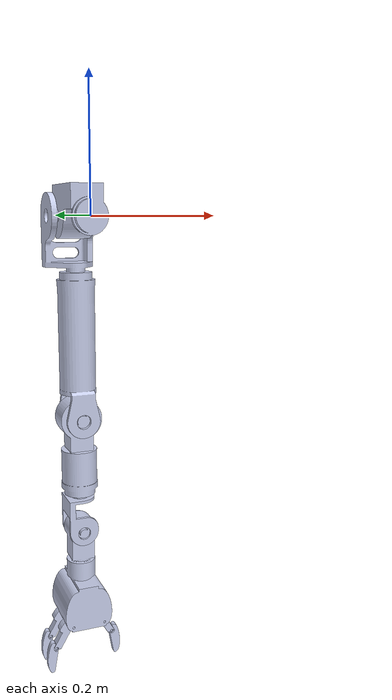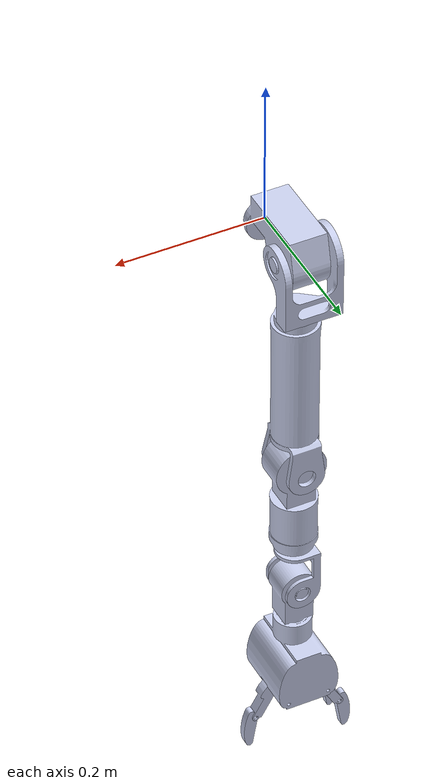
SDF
<?xml version='1.0'?>
<sdf version='1.6'>
  <model name='TEO_leftArm'>

    <link name='FrontalLeftShoulder_link'>
      <pose>0 0 0 0 -0 0</pose>
      <inertial>
        <pose>-0.002272 0.056186 0.008165 0 -0 0</pose>
        <mass>2</mass>
        <inertia>
          <ixx>0.004226791</ixx>
          <ixy>-0.0000855</ixy>
          <ixz>-0.0000117</ixz>
          <iyy>0.00212734</iyy>
          <iyz>0.000280493</iyz>
          <izz>0.00409322</izz>
        </inertia>
      </inertial>
      <visual name='FrontalLeftShoulder_visual'>
        <geometry>
          <mesh>
            <uri>model://teo/meshes/visual/FrontalLeftShoulder.dae</uri>
          </mesh>
        </geometry>
        <material>
          <ambient>0.792157 0.819608 0.933333 1</ambient>
          <diffuse>0.792157 0.819608 0.933333 1</diffuse>
          <specular>0.633726 0.655686 0.746667 1</specular>
          <emissive>0 0 0 1</emissive>
        </material>
      </visual>
      <collision name='FrontalLeftShoulder_collision'>
        <geometry>
          <mesh>
            <uri>model://teo/meshes/collision/FrontalLeftShoulder.stl</uri>
          </mesh>
        </geometry>
      </collision>
    </link>

    <joint name='FrontalLeftShoulder' type='revolute'>
      <parent>TEO_trunk::FrontalWaist_link</parent>
      <child>TEO_leftArm::FrontalLeftShoulder_link</child>
      <axis>
        <xyz>0 1 0</xyz>
        <limit>
          <lower>-1.69</lower>
          <upper>1.98</upper>
        </limit>
        <dynamics>
          <damping>0.001</damping>
          <friction>0.7</friction>
        </dynamics>
      </axis>
    </joint>

    <link name='SagittalLeftShoulder_link'>
      <pose>0 0.084 0 0 -0 0</pose>
      <inertial>
        <pose>-0.008047 0.004937 -0.027619 0 -0 0</pose>
        <mass>1</mass>
        <inertia>
          <ixx>0.001610921</ixx>
          <ixy>0.000069</ixy>
          <ixz>-0.000214885</ixz>
          <iyy>0.002187768</iyy>
          <iyz>-0.000163004</iyz>
          <izz>0.001173531</izz>
        </inertia>
      </inertial>
      <visual name='SagittalLeftShoulder_visual'>
        <geometry>
          <mesh>
            <uri>model://teo/meshes/visual/SagittalLeftShoulder.dae</uri>
          </mesh>
        </geometry>
        <material>
          <ambient>0.792157 0.819608 0.933333 1</ambient>
          <diffuse>0.792157 0.819608 0.933333 1</diffuse>
          <specular>0.633726 0.655686 0.746667 1</specular>
          <emissive>0 0 0 1</emissive>
        </material>
      </visual>
      <collision name='SagittalLeftShoulder_collision'>
        <geometry>
          <mesh>
            <uri>model://teo/meshes/collision/SagittalLeftShoulder.stl</uri>
          </mesh>
        </geometry>
      </collision>
    </link>

    <joint name='SagittalLeftShoulder' type='revolute'>
      <parent>TEO_leftArm::FrontalLeftShoulder_link</parent>
      <child>TEO_leftArm::SagittalLeftShoulder_link</child>
      <axis>
        <xyz>1 0 0</xyz>
        <limit>
          <lower>-0.42</lower>
          <upper>1.34</upper>
        </limit>
        <dynamics>
          <damping>0.001</damping>
          <friction>0.7</friction>
        </dynamics>
      </axis>
    </joint>

    <link name='AxialLeftShoulder_link'>
      <pose>0 0.084 -0.329 0 -0 0</pose>
      <inertial>
        <pose>-0.000172 0.000249 0.100649 0 -0 0</pose>
      </inertial>
      <visual name='AxialLeftShoulder_visual'>
        <geometry>
          <mesh>
            <uri>model://teo/meshes/visual/AxialLeftShoulder.dae</uri>
          </mesh>
        </geometry>
        <material>
          <ambient>0.792157 0.819608 0.933333 1</ambient>
          <diffuse>0.792157 0.819608 0.933333 1</diffuse>
          <specular>0.633726 0.655686 0.746667 1</specular>
          <emissive>0 0 0 1</emissive>
        </material>
      </visual>
      <collision name='AxialLeftShoulder_collision'>
        <geometry>
          <mesh>
            <uri>model://teo/meshes/collision/AxialLeftShoulder.stl</uri>
          </mesh>
        </geometry>
      </collision>
    </link>

    <joint name='AxialLeftShoulder' type='revolute'>
      <parent>TEO_leftArm::SagittalLeftShoulder_link</parent>
      <child>TEO_leftArm::AxialLeftShoulder_link</child>
      <axis>
        <xyz>0 0 1</xyz>
        <limit>
          <lower>-0.9</lower>
          <upper>1.47</upper>
        </limit>
        <dynamics>
          <damping>0.001</damping>
          <friction>0.7</friction>
        </dynamics>
      </axis>
    </joint>

    <link name='FrontalLeftElbow_link'>
      <pose>0 0.084 -0.329 0 -0 0</pose>
      <inertial>
        <pose>0.000287 -0.000116 -0.053185 0 -0 0</pose>
        <mass>1</mass>
        <inertia>
          <ixx>0.002590029</ixx>
          <ixy>0</ixy>
          <ixz>0</ixz>
          <iyy>0.00262307</iyy>
          <iyz>0</iyz>
          <izz>0.000446024</izz>
        </inertia>
      </inertial>
      <visual name='FrontalLeftElbow_visual'>
        <geometry>
          <mesh>
            <uri>model://teo/meshes/visual/FrontalLeftElbow.dae</uri>
          </mesh>
        </geometry>
        <material>
          <ambient>0.792157 0.819608 0.933333 1</ambient>
          <diffuse>0.792157 0.819608 0.933333 1</diffuse>
          <specular>0.633726 0.655686 0.746667 1</specular>
          <emissive>0 0 0 1</emissive>
        </material>
      </visual>
      <collision name='FrontalLeftElbow_collision'>
        <geometry>
          <mesh>
            <uri>model://teo/meshes/collision/FrontalLeftElbow.stl</uri>
          </mesh>
        </geometry>
      </collision>
    </link>

    <joint name='FrontalLeftElbow' type='revolute'>
      <parent>TEO_leftArm::AxialLeftShoulder_link</parent>
      <child>TEO_leftArm::FrontalLeftElbow_link</child>
      <axis>
        <xyz>0 1 0</xyz>
        <limit>
          <lower>-1.76</lower>
          <upper>1.69</upper>
        </limit>
        <dynamics>
          <damping>0.001</damping>
          <friction>0.7</friction>
        </dynamics>
      </axis>
    </joint>

    <link name='AxialLeftWrist_link'>
      <pose>0 0.084 -0.531 0 -0 0</pose>
      <inertial>
        <pose>-0.001151 0.000603 0.02464 0 -0 0</pose>
        <mass>0.63149</mass>
      </inertial>
      <visual name='AxialLeftWrist_visual'>
        <geometry>
          <mesh>
            <uri>model://teo/meshes/visual/AxialLeftWrist.dae</uri>
          </mesh>
        </geometry>
        <material>
          <ambient>0.792157 0.819608 0.933333 1</ambient>
          <diffuse>0.792157 0.819608 0.933333 1</diffuse>
          <specular>0.633726 0.655686 0.746667 1</specular>
          <emissive>0 0 0 1</emissive>
        </material>
      </visual>
      <collision name='AxialLeftWrist_collision'>
        <geometry>
          <mesh>
            <uri>model://teo/meshes/collision/AxialLeftWrist.stl</uri>
          </mesh>
        </geometry>
      </collision>
    </link>

    <joint name='AxialLeftWrist' type='revolute'>
      <parent>TEO_leftArm::FrontalLeftElbow_link</parent>
      <child>TEO_leftArm::AxialLeftWrist_link</child>
      <axis>
        <xyz>0 0 1</xyz>
        <limit>
          <lower>-1.77</lower>
          <upper>1.33</upper>
        </limit>
        <dynamics>
          <damping>0.001</damping>
          <friction>0.7</friction>
        </dynamics>
      </axis>
    </joint>

    <include>
      <pose>0 0.084 -0.531 0 0 0</pose>
      <uri>model://teo_lacqueyFetch/leftLacqueyFetch</uri>
    </include>

    <joint name='FrontalLeftWrist' type='revolute'>
      <parent>TEO_leftArm::AxialLeftWrist_link</parent>
      <child>TEO_leftLacqueyFetch::FrontalLeftWrist_link</child>
      <axis>
        <xyz>0 1 0</xyz>
        <limit>
          <lower>-1.98</lower>
          <upper>1.07</upper>
        </limit>
        <dynamics>
          <damping>0.001</damping>
          <friction>0.7</friction>
        </dynamics>
      </axis>
    </joint>

    <plugin name='controlboard_leftArm' filename='libgazebo_yarp_controlboard.so'>
      <yarpConfigurationFile>model://teo/conf/gazebo_teo_leftArm.ini</yarpConfigurationFile>
    </plugin>

    <plugin name='robotinterface_leftArm' filename='libgazebo_yarp_robotinterface.so'>
      <yarpRobotInterfaceConfigurationFile>model://teo/conf/teo_leftArm_nws.xml</yarpRobotInterfaceConfigurationFile>
    </plugin>

  </model>
</sdf>

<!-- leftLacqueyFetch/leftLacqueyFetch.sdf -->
<sdf version='1.6'>
  <model name='TEO_leftLacqueyFetch'>
    <!-- Base: FrontalWrist (muñeca + palma) -->
    <link name='FrontalLeftWrist_link'>
      <pose>0 0 0 0 -0 0</pose>
      <inertial>
        <pose>-0.000050 -0.000055 -0.107329 0 -0 0</pose>
        <mass>1.078</mass>
        <inertia>
          <ixx>0.0033558744</ixx>
          <ixy>-0.000000324</ixy>
          <ixz>0.0000088739</ixz>
          <iyy>0.0031520281</iyy>
          <iyz>0.0000036082</iyz>
          <izz>0.0010088020</izz>
        </inertia>
      </inertial>
      <visual name='FrontalLeftWrist_visual'>
        <geometry>
          <mesh>
            <scale>0.001 0.001 0.001</scale>
            <uri>model://teo/meshes/visual/lacqueyFetch/FrontalWrist.dae</uri>
          </mesh>
        </geometry>
        <material>
          <ambient>0.792157 0.819608 0.933333 1</ambient>
          <diffuse>0.792157 0.819608 0.933333 1</diffuse>
          <specular>0.633726 0.655686 0.746667 1</specular>
          <emissive>0 0 0 1</emissive>
        </material>
      </visual>
      <collision name='FrontalLeftWrist_collision'>
        <pose>0.0 0.0 0.0 1.57079632679 0.0 0.0</pose>
        <geometry>
          <mesh>
            <scale>0.001 0.001 0.001</scale>
            <uri>model://teo/meshes/collision/lacqueyFetch/FrontalWrist.stl</uri>
          </mesh>
        </geometry>
        <max_contacts>10</max_contacts>
        <surface>
          <contact>
            <ode>
              <kp>1000000</kp>
              <kd>100</kd>
              <max_vel>0.001</max_vel>
              <min_depth>0.001</min_depth>
            </ode>
          </contact>
          <friction>
            <ode>
              <mu>1</mu>
              <mu2>1</mu2>
              <slip1>0</slip1>
              <slip2>0</slip2>
            </ode>
          </friction>
        </surface>
      </collision>
    </link>

    <!-- Dedo pulgar (thumb): falange proximal (00) -->
    <link name='LeftThumbProximal_link'>
      <pose>0.027472302 0 -0.164588951 0 -0 0</pose>
      <inertial>
        <pose>0.012547 0.000009 -0.020977 0 -0 0</pose>
        <mass>0.018092</mass>
        <inertia>
          <ixx>0.0000042540336</ixx>
          <ixy>-0.000000000003</ixy>
          <ixz>0.0000016664918</ixz>
          <iyy>0.0000051152263</iyy>
          <iyz>-0.000000000012</iyz>
          <izz>0.0000014691909</izz>
        </inertia>
      </inertial>
      <visual name='LeftThumbProximal_visual'>
        <geometry>
          <mesh>
            <scale>0.001 0.001 0.001</scale>
            <uri>model://teo/meshes/visual/lacqueyFetch/PhalangeProximal.dae</uri>
          </mesh>
        </geometry>
        <material>
          <ambient>0.792157 0.819608 0.933333 1</ambient>
          <diffuse>0.792157 0.819608 0.933333 1</diffuse>
          <specular>0.633726 0.655686 0.746667 1</specular>
          <emissive>0 0 0 1</emissive>
        </material>
      </visual>
      <collision name='LeftThumbProximal_collision'>
        <pose>0.0 0.0 0.0 1.57079632679 0.0 -3.14159265359</pose>
        <geometry>
          <mesh>
            <scale>0.001 0.001 0.001</scale>
            <uri>model://teo/meshes/collision/lacqueyFetch/PhalangeProximal.stl</uri>
          </mesh>
        </geometry>
        <max_contacts>2</max_contacts>
        <surface>
          <contact>
            <ode>
              <kp>1000000</kp>
              <kd>100</kd>
              <max_vel>0.001</max_vel>
              <min_depth>0.001</min_depth>
            </ode>
          </contact>
          <friction>
            <ode>
              <mu>1</mu>
              <mu2>1</mu2>
              <slip1>0</slip1>
              <slip2>0</slip2>
            </ode>
          </friction>
        </surface>
      </collision>
    </link>

    <joint name='LeftThumbProximal' type='revolute'>
      <parent>TEO_leftLacqueyFetch::FrontalLeftWrist_link</parent>
      <child>TEO_leftLacqueyFetch::LeftThumbProximal_link</child>
      <axis>
        <xyz>0 -1 0</xyz>
        <limit>
          <lower>-0.523599</lower>
          <upper>0.174533</upper>
        </limit>
        <dynamics>
          <damping>0.001</damping>
          <friction>0.7</friction>
        </dynamics>
      </axis>
    </joint>

    <!-- Dedo pulgar (thumb): falange distal (00) -->
    <link name='LeftThumbDistal_link'>
      <pose>0.054472302 0 -0.211588951 0 -0 0</pose>
      <inertial>
        <pose>0.006817 0 -0.017343 0 -0 0</pose>
        <mass>0.01234</mass>
        <inertia>
          <ixx>0.000002852</ixx>
          <ixy>0.000000000</ixy>
          <ixz>0.000000239</ixz>
          <iyy>0.000003003</iyy>
          <iyz>0.00000000</iyz>
          <izz>0.000000357</izz>
        </inertia>
      </inertial>
      <visual name='LeftThumbDistal_visual'>
        <geometry>
          <mesh>
            <scale>0.001 0.001 0.001</scale>
            <uri>model://teo/meshes/visual/lacqueyFetch/PhalangeDistal.dae</uri>
          </mesh>
        </geometry>
        <material>
          <ambient>0.792157 0.819608 0.933333 1</ambient>
          <diffuse>0.792157 0.819608 0.933333 1</diffuse>
          <specular>0.633726 0.655686 0.746667 1</specular>
          <emissive>0 0 0 1</emissive>
        </material>
      </visual>
      <collision name='LeftThumbDistal_collision'>
        <pose>0.0 0.0 0.0 1.57079632679 0.0 -3.14159265359</pose>
        <geometry>
          <mesh>
            <scale>0.001 0.001 0.001</scale>
            <uri>model://teo/meshes/collision/lacqueyFetch/PhalangeDistal.stl</uri>
          </mesh>
        </geometry>
        <max_contacts>2</max_contacts>
        <surface>
          <contact>
            <ode>
              <kp>1000000</kp>
              <kd>100</kd>
              <max_vel>0.001</max_vel>
              <min_depth>0.001</min_depth>
            </ode>
          </contact>
          <friction>
            <ode>
              <mu>1</mu>
              <mu2>1</mu2>
              <slip1>0</slip1>
              <slip2>0</slip2>
            </ode>
          </friction>
        </surface>
      </collision>
    </link>
    <joint name='LeftThumbDistal' type='revolute'>
      <parent>TEO_leftLacqueyFetch::LeftThumbProximal_link</parent>
      <child>TEO_leftLacqueyFetch::LeftThumbDistal_link</child>
      <axis>
        <xyz>0 -1 0</xyz>
        <limit>
          <lower>-0.872665</lower>
          <upper>0.174533</upper>
        </limit>
        <dynamics>
          <damping>0.001</damping>
          <friction>0.7</friction>
        </dynamics>
      </axis>
    </joint>

    <!-- Dedo indice: falange proximal (01) -->
    <link name='ExternalLeftFingerProximal_link'>
      <pose>-0.02852741 0.02010339 -0.164409358 0 0 -3.14159265359</pose>
      <inertial>
        <pose>0.012547 0.000009 -0.020977 0 -0 0</pose>
        <mass>0.018092</mass>
        <inertia>
          <ixx>0.0000042540336</ixx>
          <ixy>-0.000000000003</ixy>
          <ixz>0.0000016664918</ixz>
          <iyy>0.0000051152263</iyy>
          <iyz>-0.000000000012</iyz>
          <izz>0.0000014691909</izz>
        </inertia>
      </inertial>
      <visual name='ExternalLeftFingerProximal_visual'>
        <geometry>
          <mesh>
            <scale>0.001 0.001 0.001</scale>
            <uri>model://teo/meshes/visual/lacqueyFetch/PhalangeProximal.dae</uri>
          </mesh>
        </geometry>
        <material>
          <ambient>0.792157 0.819608 0.933333 1</ambient>
          <diffuse>0.792157 0.819608 0.933333 1</diffuse>
          <specular>0.633726 0.655686 0.746667 1</specular>
          <emissive>0 0 0 1</emissive>
        </material>
      </visual>
      <collision name='ExternalLeftFingerProximal_collision'>
        <pose>0.0 0.0 0.0 1.57079632679 0.0 -3.14159265359</pose>
        <geometry>
          <mesh>
            <scale>0.001 0.001 0.001</scale>
            <uri>model://teo/meshes/collision/lacqueyFetch/PhalangeProximal.stl</uri>
          </mesh>
        </geometry>
        <max_contacts>2</max_contacts>
        <surface>
          <contact>
            <ode>
              <kp>1000000</kp>
              <kd>100</kd>
              <max_vel>0.001</max_vel>
              <min_depth>0.001</min_depth>
            </ode>
          </contact>
          <friction>
            <ode>
              <mu>1</mu>
              <mu2>1</mu2>
              <slip1>0</slip1>
              <slip2>0</slip2>
            </ode>
          </friction>
        </surface>
      </collision>
    </link>

    <joint name='ExternalLeftFingerProximal' type='revolute'>
      <parent>TEO_leftLacqueyFetch::FrontalLeftWrist_link</parent>
      <child>TEO_leftLacqueyFetch::ExternalLeftFingerProximal_link</child>
      <axis>
        <xyz>0 -1 0</xyz>
        <limit>
          <lower>-0.523599</lower>
          <upper>0.174533</upper>
        </limit>
        <dynamics>
          <damping>0.001</damping>
          <friction>0.7</friction>
        </dynamics>
      </axis>
    </joint>

    <!-- Dedo indice: falange distal (01) -->
    <link name='ExternalLeftFingerDistal_link'>
      <pose>-0.05552741 0.02010339 -0.211409358 0 -0 -3.14159265359</pose>
      <inertial>
        <pose>0.006817 0 -0.017343 0 -0 0</pose>
        <mass>0.01234</mass>
        <inertia>
          <ixx>0.000002852</ixx>
          <ixy>0.000000000</ixy>
          <ixz>0.000000239</ixz>
          <iyy>0.000003003</iyy>
          <iyz>0.00000000</iyz>
          <izz>0.000000357</izz>
        </inertia>
      </inertial>
      <visual name='ExternalLeftFingerDistal_visual'>
        <geometry>
          <mesh>
            <scale>0.001 0.001 0.001</scale>
            <uri>model://teo/meshes/visual/lacqueyFetch/PhalangeDistal.dae</uri>
          </mesh>
        </geometry>
        <material>
          <ambient>0.792157 0.819608 0.933333 1</ambient>
          <diffuse>0.792157 0.819608 0.933333 1</diffuse>
          <specular>0.633726 0.655686 0.746667 1</specular>
          <emissive>0 0 0 1</emissive>
        </material>
      </visual>
      <collision name='ExternalLeftFingerDistal_collision'>
        <pose>0.0 0.0 0.0 1.57079632679 0.0 -3.14159265359</pose>
        <geometry>
          <mesh>
            <scale>0.001 0.001 0.001</scale>
            <uri>model://teo/meshes/collision/lacqueyFetch/PhalangeDistal.stl</uri>
          </mesh>
        </geometry>
        <max_contacts>2</max_contacts>
        <surface>
          <contact>
            <ode>
              <kp>1000000</kp>
              <kd>100</kd>
              <max_vel>0.001</max_vel>
              <min_depth>0.001</min_depth>
            </ode>
          </contact>
          <friction>
            <ode>
              <mu>1</mu>
              <mu2>1</mu2>
              <slip1>0</slip1>
              <slip2>0</slip2>
            </ode>
          </friction>
        </surface>
      </collision>
    </link>
    <joint name='ExternalLeftFingerDistal' type='revolute'>
      <parent>TEO_leftLacqueyFetch::ExternalLeftFingerProximal_link</parent>
      <child>TEO_leftLacqueyFetch::ExternalLeftFingerDistal_link</child>
      <axis>
        <xyz>0 -1 0</xyz>
        <limit>
          <lower>-0.872665</lower>
          <upper>0.174533</upper>
        </limit>
        <dynamics>
          <damping>0.001</damping>
          <friction>0.7</friction>
        </dynamics>
      </axis>
    </joint>

    <!-- Dedo medio: falange proximal (02) -->
    <link name='InternalLeftFingerProximal_link'>
      <pose>-0.02852741 -0.02010339 -0.164409358 0 0 -3.14159265359</pose>
      <inertial>
        <pose>0.012547 0.000009 -0.020977 0 -0 0</pose>
        <mass>0.018092</mass>
        <inertia>
          <ixx>0.0000042540336</ixx>
          <ixy>-0.000000000003</ixy>
          <ixz>0.0000016664918</ixz>
          <iyy>0.0000051152263</iyy>
          <iyz>-0.000000000012</iyz>
          <izz>0.0000014691909</izz>
        </inertia>
      </inertial>
      <visual name='InternalLeftFingerProximal_visual'>
        <geometry>
          <mesh>
            <scale>0.001 0.001 0.001</scale>
            <uri>model://teo/meshes/visual/lacqueyFetch/PhalangeProximal.dae</uri>
          </mesh>
        </geometry>
        <material>
          <ambient>0.792157 0.819608 0.933333 1</ambient>
          <diffuse>0.792157 0.819608 0.933333 1</diffuse>
          <specular>0.633726 0.655686 0.746667 1</specular>
          <emissive>0 0 0 1</emissive>
        </material>
      </visual>
      <collision name='InternalLeftFingerProximal_collision'>
        <pose>0.0 0.0 0.0 1.57079632679 0.0 -3.14159265359</pose>
        <geometry>
          <mesh>
            <scale>0.001 0.001 0.001</scale>
            <uri>model://teo/meshes/collision/lacqueyFetch/PhalangeProximal.stl</uri>
          </mesh>
        </geometry>
        <max_contacts>2</max_contacts>
        <surface>
          <contact>
            <ode>
              <kp>1000000</kp>
              <kd>100</kd>
              <max_vel>0.001</max_vel>
              <min_depth>0.001</min_depth>
            </ode>
          </contact>
          <friction>
            <ode>
              <mu>1</mu>
              <mu2>1</mu2>
              <slip1>0</slip1>
              <slip2>0</slip2>
            </ode>
          </friction>
        </surface>
      </collision>
    </link>

    <joint name='InternalLeftFingerProximal' type='revolute'>
      <parent>TEO_leftLacqueyFetch::FrontalLeftWrist_link</parent>
      <child>TEO_leftLacqueyFetch::InternalLeftFingerProximal_link</child>
      <axis>
        <xyz>0 -1 0</xyz>
        <limit>
          <lower>-0.523599</lower>
          <upper>0.174533</upper>
        </limit>
        <dynamics>
          <damping>0.001</damping>
          <friction>0.7</friction>
        </dynamics>
      </axis>
    </joint>

    <!-- Dedo medio: falange distal (01) -->
    <link name='InternalLeftFingerDistal_link'>
      <pose>-0.05552741 -0.02010339 -0.211409358 0 -0 -3.14159265359</pose>
      <inertial>
        <pose>0.006817 0 -0.017343 0 -0 0</pose>
        <mass>0.01234</mass>
        <inertia>
          <ixx>0.000002852</ixx>
          <ixy>0.000000000</ixy>
          <ixz>0.000000239</ixz>
          <iyy>0.000003003</iyy>
          <iyz>0.00000000</iyz>
          <izz>0.000000357</izz>
        </inertia>
      </inertial>
      <visual name='InternalLeftFingerDistal_visual'>
        <geometry>
          <mesh>
            <scale>0.001 0.001 0.001</scale>
            <uri>model://teo/meshes/visual/lacqueyFetch/PhalangeDistal.dae</uri>
          </mesh>
        </geometry>
        <material>
          <ambient>0.792157 0.819608 0.933333 1</ambient>
          <diffuse>0.792157 0.819608 0.933333 1</diffuse>
          <specular>0.633726 0.655686 0.746667 1</specular>
          <emissive>0 0 0 1</emissive>
        </material>
      </visual>
      <collision name='InternalLeftFingerDistal_collision'>
        <pose>0.0 0.0 0.0 1.57079632679 0.0 -3.14159265359</pose>
        <geometry>
          <mesh>
            <scale>0.001 0.001 0.001</scale>
            <uri>model://teo/meshes/collision/lacqueyFetch/PhalangeDistal.stl</uri>
          </mesh>
        </geometry>
        <max_contacts>2</max_contacts>
        <surface>
          <contact>
            <ode>
              <kp>1000000</kp>
              <kd>100</kd>
              <max_vel>0.001</max_vel>
              <min_depth>0.001</min_depth>
            </ode>
          </contact>
          <friction>
            <ode>
              <mu>1</mu>
              <mu2>1</mu2>
              <slip1>0</slip1>
              <slip2>0</slip2>
            </ode>
          </friction>
        </surface>
      </collision>
    </link>
    <joint name='InternalLeftFingerDistal' type='revolute'>
      <parent>TEO_leftLacqueyFetch::InternalLeftFingerProximal_link</parent>
      <child>TEO_leftLacqueyFetch::InternalLeftFingerDistal_link</child>
      <axis>
        <xyz>0 -1 0</xyz>
        <limit>
          <lower>-0.872665</lower>
          <upper>0.174533</upper>
        </limit>
        <dynamics>
          <damping>0.001</damping>
          <friction>0.7</friction>
        </dynamics>
      </axis>
    </joint>

    <plugin name='controlboard_leftLacqueyFetch_thumb' filename='libgazebo_yarp_controlboard.so'>
      <yarpConfigurationFile>model://teo/conf/gazebo_teo_leftLacqueyFetch_thumb.ini</yarpConfigurationFile>
    </plugin>

    <plugin name='robotinterface_leftLacqueyFetch_thumb' filename='libgazebo_yarp_robotinterface.so'>
      <yarpRobotInterfaceConfigurationFile>model://teo/conf/teo_leftLacqueyFetch_thumb_nws.xml</yarpRobotInterfaceConfigurationFile>
    </plugin>

    <plugin name='controlboard_leftLacqueyFetch_externalFinger' filename='libgazebo_yarp_controlboard.so'>
      <yarpConfigurationFile>model://teo/conf/gazebo_teo_leftLacqueyFetch_externalFinger.ini</yarpConfigurationFile>
    </plugin>

    <plugin name='robotinterface_leftLacqueyFetch_externalFinger' filename='libgazebo_yarp_robotinterface.so'>
      <yarpRobotInterfaceConfigurationFile>model://teo/conf/teo_leftLacqueyFetch_externalFinger_nws.xml</yarpRobotInterfaceConfigurationFile>
    </plugin>

    <plugin name='controlboard_leftLacqueyFetch_internalFinger' filename='libgazebo_yarp_controlboard.so'>
      <yarpConfigurationFile>model://teo/conf/gazebo_teo_leftLacqueyFetch_internalFinger.ini</yarpConfigurationFile>
    </plugin>

    <plugin name='robotinterface_leftLacqueyFetch_internalFinger' filename='libgazebo_yarp_robotinterface.so'>
      <yarpRobotInterfaceConfigurationFile>model://teo/conf/teo_leftLacqueyFetch_internalFinger_nws.xml</yarpRobotInterfaceConfigurationFile>
    </plugin>

  </model>
</sdf>
